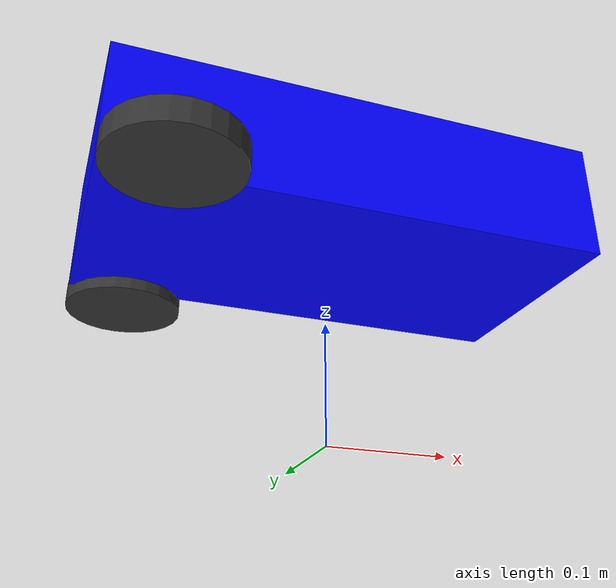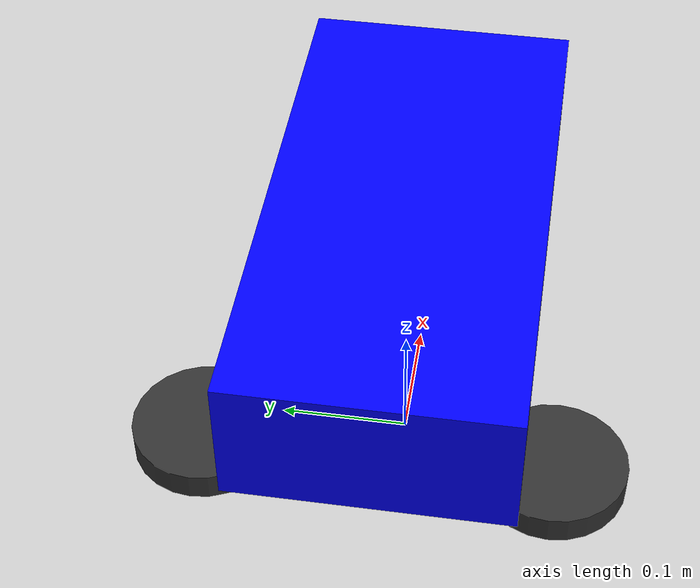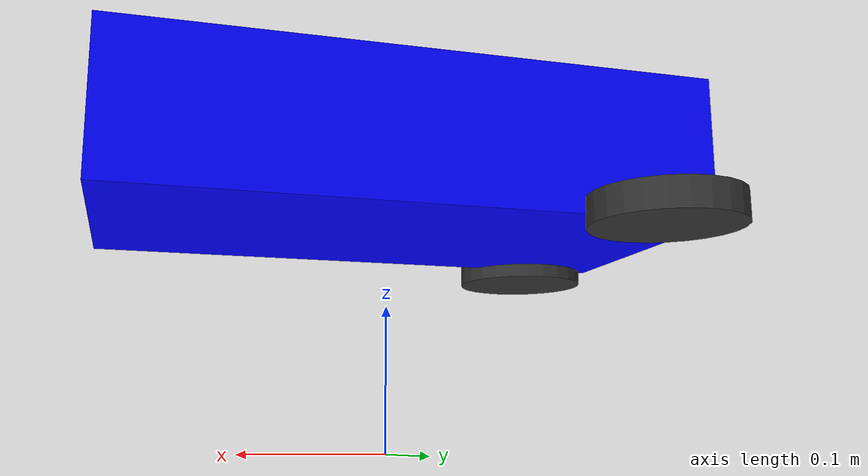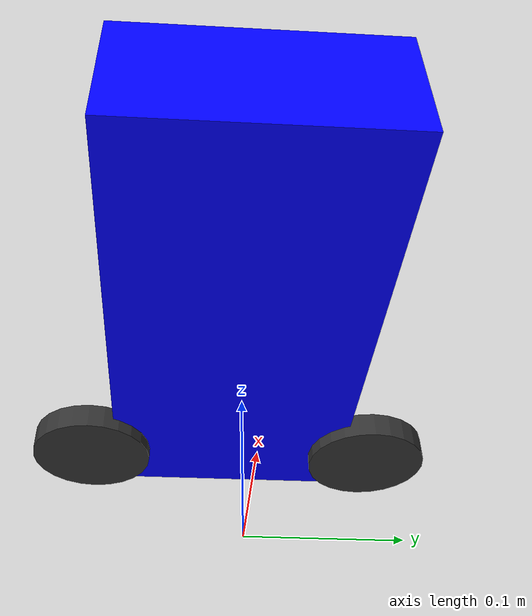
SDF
<?xml version="1.0" ?>
<sdf version="1.9">
  <model name="diff_robot">
    <pose>0 0 0.1 0 0 0</pose>

    <!-- Chassis -->
    <link name="chassis">
      <pose>0 0 0.1 0 0 0</pose>
      <collision name="chassis_collision">
        <geometry>
          <box><size>0.4 0.2 0.1</size></box>
        </geometry>
      </collision>
      <visual name="chassis_visual">
        <geometry>
          <box><size>0.4 0.2 0.1</size></box>
        </geometry>
        <material>
          <ambient>0 0 1 1</ambient>
          <diffuse>0 0 1 1</diffuse>
        </material>
      </visual>
    </link>

    <!-- Left Wheel Joint -->
    <joint name="left_wheel_joint" type="revolute">
      <pose>-0.15 0.12 0.05 0 0 0</pose>
      <child>left_wheel</child>
      <parent>chassis</parent>
      <axis>
        <xyz>0 1 0</xyz>
      </axis>
    </joint>

    <!-- Right Wheel Joint -->
    <joint name="right_wheel_joint" type="revolute">
      <pose>-0.15 -0.12 0.05 0 0 0</pose>
      <child>right_wheel</child>
      <parent>chassis</parent>
      <axis>
        <xyz>0 1 0</xyz>
      </axis>
    </joint>

    <!-- Left Wheel -->
    <link name="left_wheel">
      <pose>-0.15 0.12 0.05 0 0 0</pose>
      <collision name="left_wheel_collision">
        <geometry>
          <cylinder><radius>0.05</radius><length>0.02</length></cylinder>
        </geometry>
      </collision>
      <visual name="left_wheel_visual">
        <geometry>
          <cylinder><radius>0.05</radius><length>0.02</length></cylinder>
        </geometry>
        <material>
          <ambient>0.2 0.2 0.2 1</ambient>
          <diffuse>0.2 0.2 0.2 1</diffuse>
        </material>
      </visual>
    </link>

    <!-- Right Wheel -->
    <link name="right_wheel">
      <pose>-0.15 -0.12 0.05 0 0 0</pose>
      <collision name="right_wheel_collision">
        <geometry>
          <cylinder><radius>0.05</radius><length>0.02</length></cylinder>
        </geometry>
      </collision>
      <visual name="right_wheel_visual">
        <geometry>
          <cylinder><radius>0.05</radius><length>0.02</length></cylinder>
        </geometry>
        <material>
          <ambient>0.2 0.2 0.2 1</ambient>
          <diffuse>0.2 0.2 0.2 1</diffuse>
        </material>
      </visual>
    </link>

  </model>
</sdf>
